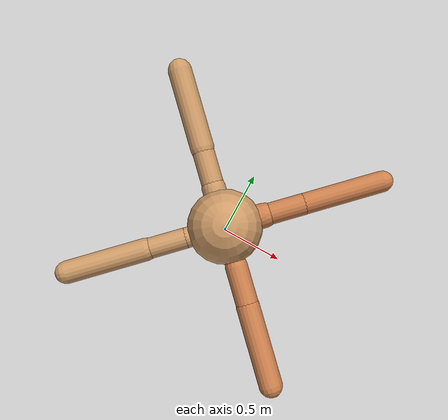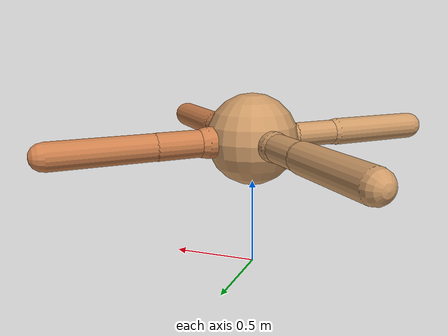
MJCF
<?xml version="1.0" encoding="utf-8"?>
<mujoco model="ant">
	<compiler angle="degree" coordinate="local" inertiafromgeom="true"></compiler>
	<option integrator="RK4" timestep="0.01"></option>
	<custom>
		<numeric data="0.0 0.0 0.55 1.0 0.0 0.0 0.0 0.0 1.0 0.0 -1.0 0.0 -1.0 0.0 1.0" name="init_qpos"></numeric>
	</custom>
	<default>
		<joint armature="1" damping="0.913328022872415" limited="true"></joint>
		<geom conaffinity="0" condim="3" density="5.0" friction="1.595565452515296 0.09593855322756223 0.09750416333906353" margin="0.01" rgba="0.8 0.6 0.4 1"></geom>
	</default>
	<worldbody>
		<body name="torso" pos="0 0 0.75">
			<geom name="torso_geom" pos="0 0 0" size="0.26314400610019717" type="sphere"></geom>
			<body name="front_left_leg" pos="0 0 0">
				<geom fromto="0.0 0.0 0.0 0.2 0.2 0.0" name="aux_1_geom" size="0.08796485175550026" type="capsule" rgba=".8 .5 .3 1"></geom>
				<body name="aux_1" pos="0.2 0.2 0">
					<joint axis="0 0 1" name="hip_1" pos="0.0 0.0 0.0" range="-40 40" type="hinge"></joint>
					<geom fromto="0.0 0.0 0.0 0.2 0.2 0.0" name="left_leg_geom" size="0.07639189182462826" type="capsule" rgba=".8 .5 .3 1"></geom>
					<body pos="0.2 0.2 0" name="front_left_foot">
						<joint axis="-1 1 0" name="ankle_1" pos="0.0 0.0 0.0" range="30 100" type="hinge"></joint>
						<geom fromto="0.0 0.0 0.0 0.4 0.4 0.0" name="left_ankle_geom" size="0.07517972010734765" type="capsule" rgba=".8 .5 .3 1"></geom>
					</body>
				</body>
			</body>
			<body name="front_right_leg" pos="0 0 0">
				<geom fromto="0.0 0.0 0.0 -0.2 0.2 0.0" name="aux_2_geom" size="0.08415604287542026" type="capsule"></geom>
				<body name="aux_2" pos="-0.2 0.2 0">
					<joint axis="0 0 1" name="hip_2" pos="0.0 0.0 0.0" range="-40 40" type="hinge"></joint>
					<geom fromto="0.0 0.0 0.0 -0.2 0.2 0.0" name="right_leg_geom" size="0.07797043095955623" type="capsule"></geom>
					<body pos="-0.2 0.2 0" name="front_right_foot">
						<joint axis="1 1 0" name="ankle_2" pos="0.0 0.0 0.0" range="-100 -30" type="hinge"></joint>
						<geom fromto="0.0 0.0 0.0 -0.4 0.4 0.0" name="right_ankle_geom" size="0.08419997705913351" type="capsule"></geom>
					</body>
				</body>
			</body>
			<body name="left_back_leg" pos="0 0 0">
				<geom fromto="0.0 0.0 0.0 -0.2 -0.2 0.0" name="aux_3_geom" size="0.07248398118857269" type="capsule"></geom>
				<body name="aux_3" pos="-0.2 -0.2 0">
					<joint axis="0 0 1" name="hip_3" pos="0.0 0.0 0.0" range="-40 40" type="hinge"></joint>
					<geom fromto="0.0 0.0 0.0 -0.2 -0.2 0.0" name="back_leg_geom" size="0.07360463953264972" type="capsule"></geom>
					<body pos="-0.2 -0.2 0" name="left_back_foot">
						<joint axis="-1 1 0" name="ankle_3" pos="0.0 0.0 0.0" range="-100 -30" type="hinge"></joint>
						<geom fromto="0.0 0.0 0.0 -0.4 -0.4 0.0" name="third_ankle_geom" size="0.0806282040676415" type="capsule"></geom>
					</body>
				</body>
			</body>
			<body name="right_back_leg" pos="0 0 0">
				<geom fromto="0.0 0.0 0.0 0.2 -0.2 0.0" name="aux_4_geom" size="0.07202769403074537" type="capsule" rgba=".8 .5 .3 1"></geom>
				<body name="aux_4" pos="0.2 -0.2 0">
					<joint axis="0 0 1" name="hip_4" pos="0.0 0.0 0.0" range="-40 40" type="hinge"></joint>
					<geom fromto="0.0 0.0 0.0 0.2 -0.2 0.0" name="rightback_leg_geom" size="0.07923051264103463" type="capsule" rgba=".8 .5 .3 1"></geom>
					<body pos="0.2 -0.2 0" name="right_back_foot">
						<joint axis="1 1 0" name="ankle_4" pos="0.0 0.0 0.0" range="30 100" type="hinge"></joint>
						<geom fromto="0.0 0.0 0.0 0.4 -0.4 0.0" name="fourth_ankle_geom" size="0.0825378329217775" type="capsule" rgba=".8 .5 .3 1"></geom>
					</body>
				</body>
			</body>
		</body>
	</worldbody>
	<actuator>
		<motor ctrllimited="true" ctrlrange="-1.0 1.0" joint="hip_4" gear="150"></motor>
		<motor ctrllimited="true" ctrlrange="-1.0 1.0" joint="ankle_4" gear="150"></motor>
		<motor ctrllimited="true" ctrlrange="-1.0 1.0" joint="hip_1" gear="150"></motor>
		<motor ctrllimited="true" ctrlrange="-1.0 1.0" joint="ankle_1" gear="150"></motor>
		<motor ctrllimited="true" ctrlrange="-1.0 1.0" joint="hip_2" gear="150"></motor>
		<motor ctrllimited="true" ctrlrange="-1.0 1.0" joint="ankle_2" gear="150"></motor>
		<motor ctrllimited="true" ctrlrange="-1.0 1.0" joint="hip_3" gear="150"></motor>
		<motor ctrllimited="true" ctrlrange="-1.0 1.0" joint="ankle_3" gear="150"></motor>
	</actuator>
</mujoco>
